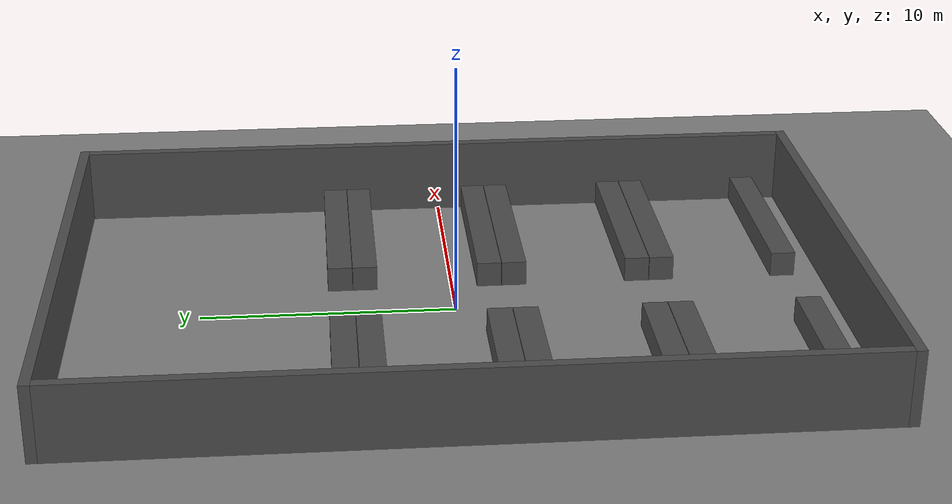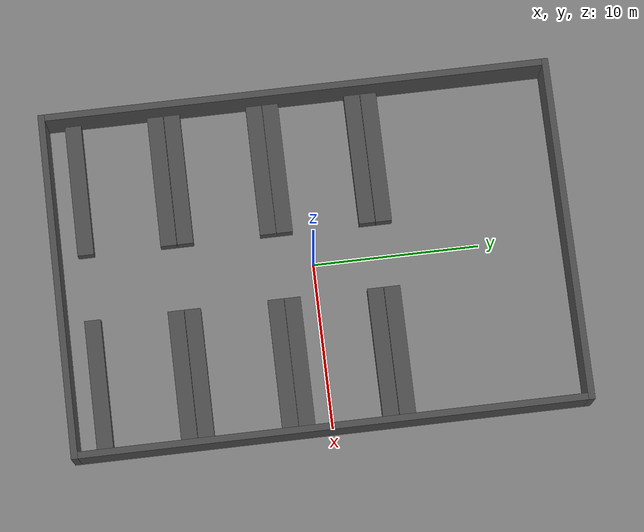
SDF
<?xml version="1.0" ?>
<sdf version="1.8">

  <!-- Copyright 2026 vladubase                                                 -->
  <!-- Licensed under the Apache License, Version 2.0 (the "License");          -->
  <!-- you may not use this file except in compliance with the License.         -->
  <!-- You may obtain a copy of the License at                                  -->
  <!-- http://www.apache.org/licenses/LICENSE-2.0                               -->
  <!-- Unless required by applicable law or agreed to in writing, software      -->
  <!-- distributed under the License is distributed on an "AS IS" BASIS,        -->
  <!-- WITHOUT WARRANTIES OR CONDITIONS OF ANY KIND, either express or implied. -->
  <!-- See the License for the specific language governing permissions and      -->
  <!-- limitations under the License.                                           -->

  <world name="mona_warehouse">
    <physics name="1ms" type="ignored">
      <max_step_size>0.001</max_step_size>
      <real_time_factor>1.0</real_time_factor>
      <ode>
        <solver>
          <type>quick</type>
          <iters>150</iters>
          <precon_iters>0</precon_iters>
          <sor>1.4</sor>
        </solver>
        <constraints>
          <cfm>0.0</cfm>
          <erp>0.2</erp>
          <contact_max_correcting_vel>100.0</contact_max_correcting_vel>
          <contact_surface_layer>0.001</contact_surface_layer>
        </constraints>
      </ode>
    </physics>

    <plugin filename="libignition-gazebo-physics-system.so"           name="ignition::gazebo::systems::Physics"/>
    <plugin filename="libignition-gazebo-user-commands-system.so"     name="ignition::gazebo::systems::UserCommands"/>
    <plugin filename="libignition-gazebo-scene-broadcaster-system.so" name="ignition::gazebo::systems::SceneBroadcaster"/>

    <light type="directional" name="sun">
      <cast_shadows>true</cast_shadows>
      <pose>0 0 10 0 0 0</pose>
      <diffuse>0.8 0.8 0.8 1</diffuse>
      <specular>0.2 0.2 0.2 1</specular>
    </light>

    <!-- WORLD CONCRETE GROUND-->
    <model name="ground_plane">
      <static>true</static>
      <link name="link">
        <visual name="visual">
          <geometry>
            <plane>
              <normal>0 0 1</normal>
              <size>20 30</size>
            </plane>
          </geometry>
          <material>
            <ambient>0.3 0.3 0.3 1</ambient>
            <diffuse>0.5 0.5 0.5 1</diffuse>
            <specular>0.4 0.4 0.4 1</specular>
          </material>
        </visual>

        <collision name="collision">
          <geometry>
            <plane>
              <normal>0 0 1</normal>
              <size>20 30</size>
            </plane>
          </geometry>
          <surface>
            <friction>
              <ode>
                <mu>0.7</mu>
                <mu2>0.7</mu2>
              </ode>
            </friction>
          </surface>
        </collision>
      </link>
    </model>

    <!-- WALLS-->
    <model name="Wall_1">
      <static>true</static>
      <pose>10.2 0 1.5 0 0 0</pose>
      <link name="link">
        <collision name="collision">
          <geometry>
            <box>
              <size>0.4 30.0 3.0</size>
            </box>
          </geometry>
        </collision>
        <visual name="visual">
          <geometry>
            <box>
              <size>0.4 30.0 3.0</size>
            </box>
          </geometry>
          <material>
            <ambient>0.2 0.2 0.2 1</ambient>
            <diffuse>0.3 0.3 0.3 1</diffuse>
          </material>
        </visual>
      </link>
    </model>
    <model name="Wall_3">
      <static>true</static>
      <pose>-10.2 0 1.5 0 0 0</pose>
      <link name="link">
        <collision name="collision">
          <geometry>
            <box>
              <size>0.4 30.0 3.0</size>
            </box>
          </geometry>
        </collision>
        <visual name="visual">
          <geometry>
            <box>
              <size>0.4 30.0 3.0</size>
            </box>
          </geometry>
          <material>
            <ambient>0.2 0.2 0.2 1</ambient>
            <diffuse>0.3 0.3 0.3 1</diffuse>
          </material>
        </visual>
      </link>
    </model>
    <model name="Wall_2">
      <static>true</static>
      <pose>0 15.2 1.5 0 0 0</pose>
      <link name="link">
        <collision name="collision">
          <geometry>
            <box>
              <size>20.8 0.4 3.0</size>
            </box>
          </geometry>
        </collision>
        <visual name="visual">
          <geometry>
            <box>
              <size>20.8 0.4 3.0</size>
            </box>
          </geometry>
          <material>
            <ambient>0.2 0.2 0.2 1</ambient>
            <diffuse>0.3 0.3 0.3 1</diffuse>
          </material>
        </visual>
      </link>
    </model>
    <model name="Wall_4">
      <static>true</static>
      <pose>0 -15.2 1.5 0 0 0</pose>
      <link name="link">
        <collision name="collision">
          <geometry>
            <box>
              <size>20.8 0.4 3.0</size>
            </box>
          </geometry>
        </collision>
        <visual name="visual">
          <geometry>
            <box>
              <size>20.8 0.4 3.0</size>
            </box>
          </geometry>
          <material>
            <ambient>0.2 0.2 0.2 1</ambient>
            <diffuse>0.3 0.3 0.3 1</diffuse>
          </material>
        </visual>
      </link>
    </model>

    <!-- RACKS-->
    <model name="rack_row_1_1">
      <static>true</static>
      <pose>6.0 4.5 0.5 0 0 1.57079632679</pose>
      <link name="link">
        <collision name="collision">
          <geometry>
            <box>
              <size>0.98 8.0 1.0</size>
            </box>
          </geometry>
        </collision>
        <visual name="visual">
          <geometry>
            <box>
              <size>0.98 8.0 1.0</size>
            </box>
          </geometry>
          <material>
            <ambient>0.2 0.2 0.2 1</ambient>
            <diffuse>0.3 0.3 0.3 1</diffuse>
          </material>
        </visual>
      </link>
    </model>
    <model name="rack_row_1_2">
      <static>true</static>
      <pose>-6.0 4.5 0.5 0 0 1.57079632679</pose>
      <link name="link">
        <collision name="collision">
          <geometry>
            <box>
              <size>0.98 8.0 1.0</size>
            </box>
          </geometry>
        </collision>
        <visual name="visual">
          <geometry>
            <box>
              <size>0.98 8.0 1.0</size>
            </box>
          </geometry>
          <material>
            <ambient>0.2 0.2 0.2 1</ambient>
            <diffuse>0.3 0.3 0.3 1</diffuse>
          </material>
        </visual>
      </link>
    </model>

    <model name="rack_row_2_1">
      <static>true</static>
      <pose>6.0 3.5 0.5 0 0 1.57079632679</pose>
      <link name="link">
        <collision name="collision">
          <geometry>
            <box>
              <size>0.98 8.0 1.0</size>
            </box>
          </geometry>
        </collision>
        <visual name="visual">
          <geometry>
            <box>
              <size>0.98 8.0 1.0</size>
            </box>
          </geometry>
          <material>
            <ambient>0.2 0.2 0.2 1</ambient>
            <diffuse>0.3 0.3 0.3 1</diffuse>
          </material>
        </visual>
      </link>
    </model>
    <model name="rack_row_2_2">
      <static>true</static>
      <pose>-6.0 3.5 0.5 0 0 1.57079632679</pose>
      <link name="link">
        <collision name="collision">
          <geometry>
            <box>
              <size>0.98 8.0 1.0</size>
            </box>
          </geometry>
        </collision>
        <visual name="visual">
          <geometry>
            <box>
              <size>0.98 8.0 1.0</size>
            </box>
          </geometry>
          <material>
            <ambient>0.2 0.2 0.2 1</ambient>
            <diffuse>0.3 0.3 0.3 1</diffuse>
          </material>
        </visual>
      </link>
    </model>

    <model name="rack_row_3_1">
      <static>true</static>
      <pose>6.0 -1.5 0.5 0 0 1.57079632679</pose>
      <link name="link">
        <collision name="collision">
          <geometry>
            <box>
              <size>0.98 8.0 1.0</size>
            </box>
          </geometry>
        </collision>
        <visual name="visual">
          <geometry>
            <box>
              <size>0.98 8.0 1.0</size>
            </box>
          </geometry>
          <material>
            <ambient>0.2 0.2 0.2 1</ambient>
            <diffuse>0.3 0.3 0.3 1</diffuse>
          </material>
        </visual>
      </link>
    </model>
    <model name="rack_row_3_2">
      <static>true</static>
      <pose>-6.0 -1.5 0.5 0 0 1.57079632679</pose>
      <link name="link">
        <collision name="collision">
          <geometry>
            <box>
              <size>0.98 8.0 1.0</size>
            </box>
          </geometry>
        </collision>
        <visual name="visual">
          <geometry>
            <box>
              <size>0.98 8.0 1.0</size>
            </box>
          </geometry>
          <material>
            <ambient>0.2 0.2 0.2 1</ambient>
            <diffuse>0.3 0.3 0.3 1</diffuse>
          </material>
        </visual>
      </link>
    </model>

    <model name="rack_row_4_1">
      <static>true</static>
      <pose>6.0 -2.5 0.5 0 0 1.57079632679</pose>
      <link name="link">
        <collision name="collision">
          <geometry>
            <box>
              <size>0.98 8.0 1.0</size>
            </box>
          </geometry>
        </collision>
        <visual name="visual">
          <geometry>
            <box>
              <size>0.98 8.0 1.0</size>
            </box>
          </geometry>
          <material>
            <ambient>0.2 0.2 0.2 1</ambient>
            <diffuse>0.3 0.3 0.3 1</diffuse>
          </material>
        </visual>
      </link>
    </model>
    <model name="rack_row_4_2">
      <static>true</static>
      <pose>-6.0 -2.5 0.5 0 0 1.57079632679</pose>
      <link name="link">
        <collision name="collision">
          <geometry>
            <box>
              <size>0.98 8.0 1.0</size>
            </box>
          </geometry>
        </collision>
        <visual name="visual">
          <geometry>
            <box>
              <size>0.98 8.0 1.0</size>
            </box>
          </geometry>
          <material>
            <ambient>0.2 0.2 0.2 1</ambient>
            <diffuse>0.3 0.3 0.3 1</diffuse>
          </material>
        </visual>
      </link>
    </model>

    <model name="rack_row_5_1">
      <static>true</static>
      <pose>6.0 -7.5 0.5 0 0 1.57079632679</pose>
      <link name="link">
        <collision name="collision">
          <geometry>
            <box>
              <size>0.98 8.0 1.0</size>
            </box>
          </geometry>
        </collision>
        <visual name="visual">
          <geometry>
            <box>
              <size>0.98 8.0 1.0</size>
            </box>
          </geometry>
          <material>
            <ambient>0.2 0.2 0.2 1</ambient>
            <diffuse>0.3 0.3 0.3 1</diffuse>
          </material>
        </visual>
      </link>
    </model>
    <model name="rack_row_5_2">
      <static>true</static>
      <pose>-6.0 -7.5 0.5 0 0 1.57079632679</pose>
      <link name="link">
        <collision name="collision">
          <geometry>
            <box>
              <size>0.98 8.0 1.0</size>
            </box>
          </geometry>
        </collision>
        <visual name="visual">
          <geometry>
            <box>
              <size>0.98 8.0 1.0</size>
            </box>
          </geometry>
          <material>
            <ambient>0.2 0.2 0.2 1</ambient>
            <diffuse>0.3 0.3 0.3 1</diffuse>
          </material>
        </visual>
      </link>
    </model>

    <model name="rack_row_6_1">
      <static>true</static>
      <pose>6.0 -8.5 0.5 0 0 1.57079632679</pose>
      <link name="link">
        <collision name="collision">
          <geometry>
            <box>
              <size>0.98 8.0 1.0</size>
            </box>
          </geometry>
        </collision>
        <visual name="visual">
          <geometry>
            <box>
              <size>0.98 8.0 1.0</size>
            </box>
          </geometry>
          <material>
            <ambient>0.2 0.2 0.2 1</ambient>
            <diffuse>0.3 0.3 0.3 1</diffuse>
          </material>
        </visual>
      </link>
    </model>
    <model name="rack_row_6_2">
      <static>true</static>
      <pose>-6.0 -8.5 0.5 0 0 1.57079632679</pose>
      <link name="link">
        <collision name="collision">
          <geometry>
            <box>
              <size>0.98 8.0 1.0</size>
            </box>
          </geometry>
        </collision>
        <visual name="visual">
          <geometry>
            <box>
              <size>0.98 8.0 1.0</size>
            </box>
          </geometry>
          <material>
            <ambient>0.2 0.2 0.2 1</ambient>
            <diffuse>0.3 0.3 0.3 1</diffuse>
          </material>
        </visual>
      </link>
    </model>

    <model name="rack_row_7_1">
      <static>true</static>
      <pose>6.0 -13.5 0.5 0 0 1.57079632679</pose>
      <link name="link">
        <collision name="collision">
          <geometry>
            <box>
              <size>0.98 8.0 1.0</size>
            </box>
          </geometry>
        </collision>
        <visual name="visual">
          <geometry>
            <box>
              <size>0.98 8.0 1.0</size>
            </box>
          </geometry>
          <material>
            <ambient>0.2 0.2 0.2 1</ambient>
            <diffuse>0.3 0.3 0.3 1</diffuse>
          </material>
        </visual>
      </link>
    </model>
    <model name="rack_row_7_2">
      <static>true</static>
      <pose>-6.0 -13.5 0.5 0 0 1.57079632679</pose>
      <link name="link">
        <collision name="collision">
          <geometry>
            <box>
              <size>0.98 8.0 1.0</size>
            </box>
          </geometry>
        </collision>
        <visual name="visual">
          <geometry>
            <box>
              <size>0.98 8.0 1.0</size>
            </box>
          </geometry>
          <material>
            <ambient>0.2 0.2 0.2 1</ambient>
            <diffuse>0.3 0.3 0.3 1</diffuse>
          </material>
        </visual>
      </link>
    </model>
  </world>
</sdf>
